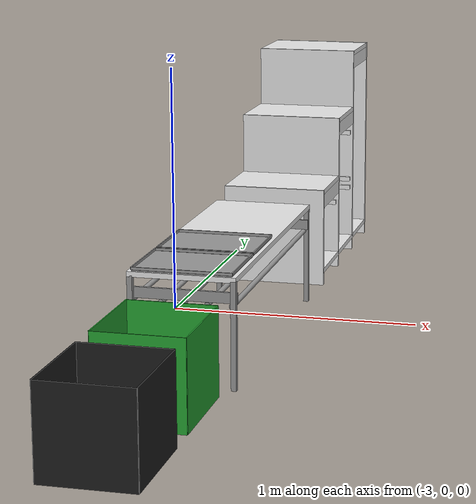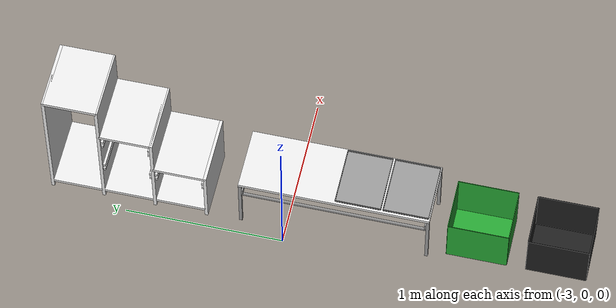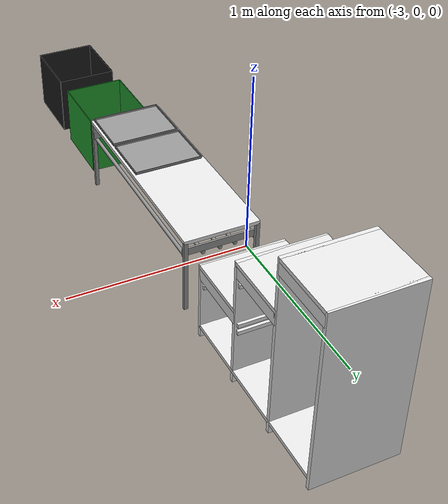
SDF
<sdf version="1.6">
 <world name="default">
  <model name="wrc_bin_black">
   <static>1</static>
   <link name="link">
    <inertial><mass>1</mass></inertial>
    <collision name="bottom">
     <pose>0 0 0.002 0 -0 0</pose>
     <geometry><box><size>0.33 0.38 0.004</size></box></geometry>
    </collision>
    <visual name="bottom_v">
     <pose>0 0 0.002 0 -0 0</pose>
     <geometry><box><size>0.33 0.38 0.004</size></box></geometry>
     <material>
      <script><uri>file://media/materials/scripts/gazebo.material</uri><name>Gazebo/Black</name></script>
     </material>
    </visual>
    <collision name="front">
     <pose>0 0.19 0.165 0 -0 0</pose>
     <geometry><box><size>0.33 0.004 0.33</size></box></geometry>
    </collision>
    <visual name="front_v">
     <pose>0 0.19 0.165 0 -0 0</pose>
     <geometry><box><size>0.33 0.004 0.33</size></box></geometry>
     <material>
      <script><uri>file://media/materials/scripts/gazebo.material</uri><name>Gazebo/Black</name></script>
     </material>
    </visual>
    <collision name="back">
     <pose>0 -0.19 0.165 0 -0 0</pose>
     <geometry><box><size>0.33 0.004 0.33</size></box></geometry>
    </collision>
    <visual name="back_v">
     <pose>0 -0.19 0.165 0 -0 0</pose>
     <geometry><box><size>0.33 0.004 0.33</size></box></geometry>
     <material>
      <script><uri>file://media/materials/scripts/gazebo.material</uri><name>Gazebo/Black</name></script>
     </material>
    </visual>
    <collision name="left">
     <pose>0.165 0 0.165 0 -0 0</pose>
     <geometry><box><size>0.004 0.38 0.33</size></box></geometry>
    </collision>
    <visual name="left_v">
     <pose>0.165 0 0.165 0 -0 0</pose>
     <geometry><box><size>0.004 0.38 0.33</size></box></geometry>
     <material>
      <script><uri>file://media/materials/scripts/gazebo.material</uri><name>Gazebo/Black</name></script>
     </material>
    </visual>
    <collision name="right">
     <pose>-0.165 0 0.165 0 -0 0</pose>
     <geometry><box><size>0.004 0.38 0.33</size></box></geometry>
    </collision>
    <visual name="right_v">
     <pose>-0.165 0 0.165 0 -0 0</pose>
     <geometry><box><size>0.004 0.38 0.33</size></box></geometry>
     <material>
      <script><uri>file://media/materials/scripts/gazebo.material</uri><name>Gazebo/Black</name></script>
     </material>
    </visual>
   </link>
   <pose>-2.7 -1.7 0 0 -0 0</pose>
  </model>
  <model name="wrc_bin_green">
   <static>1</static>
   <link name="link">
    <inertial><mass>1</mass></inertial>
    <collision name="bottom">
     <pose>0 0 0.002 0 -0 0</pose>
     <geometry><box><size>0.33 0.38 0.004</size></box></geometry>
    </collision>
    <visual name="bottom_v">
     <pose>0 0 0.002 0 -0 0</pose>
     <geometry><box><size>0.33 0.38 0.004</size></box></geometry>
     <material>
      <script><uri>file://media/materials/scripts/gazebo.material</uri><name>Gazebo/Green</name></script>
     </material>
    </visual>
    <collision name="front">
     <pose>0 0.19 0.165 0 -0 0</pose>
     <geometry><box><size>0.33 0.004 0.33</size></box></geometry>
    </collision>
    <visual name="front_v">
     <pose>0 0.19 0.165 0 -0 0</pose>
     <geometry><box><size>0.33 0.004 0.33</size></box></geometry>
     <material>
      <script><uri>file://media/materials/scripts/gazebo.material</uri><name>Gazebo/Green</name></script>
     </material>
    </visual>
    <collision name="back">
     <pose>0 -0.19 0.165 0 -0 0</pose>
     <geometry><box><size>0.33 0.004 0.33</size></box></geometry>
    </collision>
    <visual name="back_v">
     <pose>0 -0.19 0.165 0 -0 0</pose>
     <geometry><box><size>0.33 0.004 0.33</size></box></geometry>
     <material>
      <script><uri>file://media/materials/scripts/gazebo.material</uri><name>Gazebo/Green</name></script>
     </material>
    </visual>
    <collision name="left">
     <pose>0.165 0 0.165 0 -0 0</pose>
     <geometry><box><size>0.004 0.38 0.33</size></box></geometry>
    </collision>
    <visual name="left_v">
     <pose>0.165 0 0.165 0 -0 0</pose>
     <geometry><box><size>0.004 0.38 0.33</size></box></geometry>
     <material>
      <script><uri>file://media/materials/scripts/gazebo.material</uri><name>Gazebo/Green</name></script>
     </material>
    </visual>
    <collision name="right">
     <pose>-0.165 0 0.165 0 -0 0</pose>
     <geometry><box><size>0.004 0.38 0.33</size></box></geometry>
    </collision>
    <visual name="right_v">
     <pose>-0.165 0 0.165 0 -0 0</pose>
     <geometry><box><size>0.004 0.38 0.33</size></box></geometry>
     <material>
      <script><uri>file://media/materials/scripts/gazebo.material</uri><name>Gazebo/Green</name></script>
     </material>
    </visual>
   </link>
   <pose>-2.7 -1.2 0 0 -0 0</pose>
  </model>
  <model name="wrc_stair_like_drawer">
   <static>1</static>
   <link name="link">
    <inertial><mass>1</mass></inertial>
    <collision name="slit1">
     <pose>0 -0.495 0.21 0 -0 0</pose>
     <geometry><box><size>0.44 0.02 0.42</size></box></geometry>
    </collision>
    <visual name="slit1_v">
     <pose>0 -0.495 0.21 0 -0 0</pose>
     <geometry><box><size>0.44 0.02 0.42</size></box></geometry>
     <material>
      <script><uri>file://media/materials/scripts/gazebo.material</uri><name>Gazebo/White</name></script>
     </material>
    </visual>
    <collision name="holder_slit1_1_left_low">
     <pose>0 -0.48 0.3 0 -0 0</pose>
     <geometry><box><size>0.42 0.02 0.02</size></box></geometry>
    </collision>
    <visual name="holder_slit1_1_left_low_v">
     <pose>0 -0.48 0.3 0 -0 0</pose>
     <geometry><box><size>0.42 0.02 0.02</size></box></geometry>
     <material>
      <script><uri>file://media/materials/scripts/gazebo.material</uri><name>Gazebo/White</name></script>
     </material>
    </visual>
    <collision name="holder_slit1_1_left_high">
     <pose>0 -0.48 0.34 0 -0 0</pose>
     <geometry><box><size>0.42 0.02 0.02</size></box></geometry>
    </collision>
    <visual name="holder_slit1_1_left_high_v">
     <pose>0 -0.48 0.34 0 -0 0</pose>
     <geometry><box><size>0.42 0.02 0.02</size></box></geometry>
     <material>
      <script><uri>file://media/materials/scripts/gazebo.material</uri><name>Gazebo/White</name></script>
     </material>
    </visual>
    <collision name="holder_slit1_1_right_low">
     <pose>0 -0.18 0.3 0 -0 0</pose>
     <geometry><box><size>0.42 0.02 0.02</size></box></geometry>
    </collision>
    <visual name="holder_slit1_1_right_low_v">
     <pose>0 -0.18 0.3 0 -0 0</pose>
     <geometry><box><size>0.42 0.02 0.02</size></box></geometry>
     <material>
      <script><uri>file://media/materials/scripts/gazebo.material</uri><name>Gazebo/White</name></script>
     </material>
    </visual>
    <collision name="holder_slit1_1_right_high">
     <pose>0 -0.18 0.34 0 -0 0</pose>
     <geometry><box><size>0.42 0.02 0.02</size></box></geometry>
    </collision>
    <visual name="holder_slit1_1_right_high_v">
     <pose>0 -0.18 0.34 0 -0 0</pose>
     <geometry><box><size>0.42 0.02 0.02</size></box></geometry>
     <material>
      <script><uri>file://media/materials/scripts/gazebo.material</uri><name>Gazebo/White</name></script>
     </material>
    </visual>
    <collision name="slit2">
     <pose>0 -0.165 0.34 0 -0 0</pose>
     <geometry><box><size>0.44 0.02 0.68</size></box></geometry>
    </collision>
    <visual name="slit2_v">
     <pose>0 -0.165 0.34 0 -0 0</pose>
     <geometry><box><size>0.44 0.02 0.68</size></box></geometry>
     <material>
      <script><uri>file://media/materials/scripts/gazebo.material</uri><name>Gazebo/White</name></script>
     </material>
    </visual>
    <collision name="holder_slit2_1_left_low">
     <pose>0 -0.15 0.3 0 -0 0</pose>
     <geometry><box><size>0.42 0.02 0.02</size></box></geometry>
    </collision>
    <visual name="holder_slit2_1_left_low_v">
     <pose>0 -0.15 0.3 0 -0 0</pose>
     <geometry><box><size>0.42 0.02 0.02</size></box></geometry>
     <material>
      <script><uri>file://media/materials/scripts/gazebo.material</uri><name>Gazebo/White</name></script>
     </material>
    </visual>
    <collision name="holder_slit2_1_left_high">
     <pose>0 -0.15 0.34 0 -0 0</pose>
     <geometry><box><size>0.42 0.02 0.02</size></box></geometry>
    </collision>
    <visual name="holder_slit2_1_left_high_v">
     <pose>0 -0.15 0.34 0 -0 0</pose>
     <geometry><box><size>0.42 0.02 0.02</size></box></geometry>
     <material>
      <script><uri>file://media/materials/scripts/gazebo.material</uri><name>Gazebo/White</name></script>
     </material>
    </visual>
    <collision name="holder_slit2_1_right_low">
     <pose>0 0.15 0.3 0 -0 0</pose>
     <geometry><box><size>0.42 0.02 0.02</size></box></geometry>
    </collision>
    <visual name="holder_slit2_1_right_low_v">
     <pose>0 0.15 0.3 0 -0 0</pose>
     <geometry><box><size>0.42 0.02 0.02</size></box></geometry>
     <material>
      <script><uri>file://media/materials/scripts/gazebo.material</uri><name>Gazebo/White</name></script>
     </material>
    </visual>
    <collision name="holder_slit2_1_right_high">
     <pose>0 0.15 0.34 0 -0 0</pose>
     <geometry><box><size>0.42 0.02 0.02</size></box></geometry>
    </collision>
    <visual name="holder_slit2_1_right_high_v">
     <pose>0 0.15 0.34 0 -0 0</pose>
     <geometry><box><size>0.42 0.02 0.02</size></box></geometry>
     <material>
      <script><uri>file://media/materials/scripts/gazebo.material</uri><name>Gazebo/White</name></script>
     </material>
    </visual>
    <collision name="holder_slit2_2_left_low">
     <pose>0 -0.15 0.56 0 -0 0</pose>
     <geometry><box><size>0.42 0.02 0.02</size></box></geometry>
    </collision>
    <visual name="holder_slit2_2_left_low_v">
     <pose>0 -0.15 0.56 0 -0 0</pose>
     <geometry><box><size>0.42 0.02 0.02</size></box></geometry>
     <material>
      <script><uri>file://media/materials/scripts/gazebo.material</uri><name>Gazebo/White</name></script>
     </material>
    </visual>
    <collision name="holder_slit2_2_left_high">
     <pose>0 -0.15 0.6 0 -0 0</pose>
     <geometry><box><size>0.42 0.02 0.02</size></box></geometry>
    </collision>
    <visual name="holder_slit2_2_left_high_v">
     <pose>0 -0.15 0.6 0 -0 0</pose>
     <geometry><box><size>0.42 0.02 0.02</size></box></geometry>
     <material>
      <script><uri>file://media/materials/scripts/gazebo.material</uri><name>Gazebo/White</name></script>
     </material>
    </visual>
    <collision name="holder_slit2_2_right_low">
     <pose>0 0.15 0.56 0 -0 0</pose>
     <geometry><box><size>0.42 0.02 0.02</size></box></geometry>
    </collision>
    <visual name="holder_slit2_2_right_low_v">
     <pose>0 0.15 0.56 0 -0 0</pose>
     <geometry><box><size>0.42 0.02 0.02</size></box></geometry>
     <material>
      <script><uri>file://media/materials/scripts/gazebo.material</uri><name>Gazebo/White</name></script>
     </material>
    </visual>
    <collision name="holder_slit2_2_right_high">
     <pose>0 0.15 0.6 0 -0 0</pose>
     <geometry><box><size>0.42 0.02 0.02</size></box></geometry>
    </collision>
    <visual name="holder_slit2_2_right_high_v">
     <pose>0 0.15 0.6 0 -0 0</pose>
     <geometry><box><size>0.42 0.02 0.02</size></box></geometry>
     <material>
      <script><uri>file://media/materials/scripts/gazebo.material</uri><name>Gazebo/White</name></script>
     </material>
    </visual>
    <collision name="slit3">
     <pose>0 0.165 0.47 0 -0 0</pose>
     <geometry><box><size>0.44 0.02 0.94</size></box></geometry>
    </collision>
    <visual name="slit3_v">
     <pose>0 0.165 0.47 0 -0 0</pose>
     <geometry><box><size>0.44 0.02 0.94</size></box></geometry>
     <material>
      <script><uri>file://media/materials/scripts/gazebo.material</uri><name>Gazebo/White</name></script>
     </material>
    </visual>
    <collision name="slit4">
     <pose>0 0.495 0.47 0 -0 0</pose>
     <geometry><box><size>0.44 0.02 0.94</size></box></geometry>
    </collision>
    <visual name="slit4_v">
     <pose>0 0.495 0.47 0 -0 0</pose>
     <geometry><box><size>0.44 0.02 0.94</size></box></geometry>
     <material>
      <script><uri>file://media/materials/scripts/gazebo.material</uri><name>Gazebo/White</name></script>
     </material>
    </visual>
    <collision name="top1">
     <pose>0 -0.33 0.41 0 -0 0</pose>
     <geometry><box><size>0.44 0.33 0.02</size></box></geometry>
    </collision>
    <visual name="top1_v">
     <pose>0 -0.33 0.41 0 -0 0</pose>
     <geometry><box><size>0.44 0.33 0.02</size></box></geometry>
     <material>
      <script><uri>file://media/materials/scripts/gazebo.material</uri><name>Gazebo/White</name></script>
     </material>
    </visual>
    <collision name="top1_front">
     <pose>0.21 -0.33 0.37 0 -0 0</pose>
     <geometry><box><size>0.02 0.33 0.06</size></box></geometry>
    </collision>
    <visual name="top1_front_v">
     <pose>0.21 -0.33 0.37 0 -0 0</pose>
     <geometry><box><size>0.02 0.33 0.06</size></box></geometry>
     <material>
      <script><uri>file://media/materials/scripts/gazebo.material</uri><name>Gazebo/White</name></script>
     </material>
    </visual>
    <collision name="top2">
     <pose>0 0 0.67 0 -0 0</pose>
     <geometry><box><size>0.44 0.33 0.02</size></box></geometry>
    </collision>
    <visual name="top2_v">
     <pose>0 0 0.67 0 -0 0</pose>
     <geometry><box><size>0.44 0.33 0.02</size></box></geometry>
     <material>
      <script><uri>file://media/materials/scripts/gazebo.material</uri><name>Gazebo/White</name></script>
     </material>
    </visual>
    <collision name="top2_front">
     <pose>0.21 0 0.63 0 -0 0</pose>
     <geometry><box><size>0.02 0.33 0.06</size></box></geometry>
    </collision>
    <visual name="top2_front_v">
     <pose>0.21 0 0.63 0 -0 0</pose>
     <geometry><box><size>0.02 0.33 0.06</size></box></geometry>
     <material>
      <script><uri>file://media/materials/scripts/gazebo.material</uri><name>Gazebo/White</name></script>
     </material>
    </visual>
    <collision name="top3">
     <pose>0 0.33 0.93 0 -0 0</pose>
     <geometry><box><size>0.44 0.33 0.02</size></box></geometry>
    </collision>
    <visual name="top3_v">
     <pose>0 0.33 0.93 0 -0 0</pose>
     <geometry><box><size>0.44 0.33 0.02</size></box></geometry>
     <material>
      <script><uri>file://media/materials/scripts/gazebo.material</uri><name>Gazebo/White</name></script>
     </material>
    </visual>
    <collision name="top3_front">
     <pose>0.21 0.33 0.89 0 -0 0</pose>
     <geometry><box><size>0.02 0.33 0.06</size></box></geometry>
    </collision>
    <visual name="top3_front_v">
     <pose>0.21 0.33 0.89 0 -0 0</pose>
     <geometry><box><size>0.02 0.33 0.06</size></box></geometry>
     <material>
      <script><uri>file://media/materials/scripts/gazebo.material</uri><name>Gazebo/White</name></script>
     </material>
    </visual>
    <collision name="bottom">
     <pose>0 0 0.06 0 -0 0</pose>
     <geometry><box><size>0.44 0.99 0.02</size></box></geometry>
    </collision>
    <visual name="bottom_v">
     <pose>0 0 0.06 0 -0 0</pose>
     <geometry><box><size>0.44 0.99 0.02</size></box></geometry>
     <material>
      <script><uri>file://media/materials/scripts/gazebo.material</uri><name>Gazebo/White</name></script>
     </material>
    </visual>
   </link>
   <pose>-2.7 1 0 0 -0 0</pose>
  </model>
  <model name="wrc_long_table_0">
   <static>1</static>
   <link name="link">
    <inertial><mass>1</mass></inertial>
    <collision name="top">
     <pose>0 0 0.39 0 -0 0</pose>
     <geometry><box><size>1.2 0.4 0.02</size></box></geometry>
    </collision>
    <visual name="top_v">
     <pose>0 0 0.39 0 -0 0</pose>
     <geometry><box><size>1.2 0.4 0.02</size></box></geometry>
     <material>
      <script><uri>file://media/materials/scripts/gazebo.material</uri><name>Gazebo/White</name></script>
     </material>
    </visual>
    <collision name="leg1">
     <pose>0.59 0.19 0.185 0 -0 0</pose>
     <geometry><box><size>0.02 0.02 0.4</size></box></geometry>
    </collision>
    <visual name="leg1_v">
     <pose>0.59 0.19 0.185 0 -0 0</pose>
     <geometry><box><size>0.02 0.02 0.4</size></box></geometry>
     <material>
      <script><uri>file://media/materials/scripts/gazebo.material</uri><name>Gazebo/Gray</name></script>
     </material>
    </visual>
    <collision name="leg2">
     <pose>-0.59 0.19 0.185 0 -0 0</pose>
     <geometry><box><size>0.02 0.02 0.4</size></box></geometry>
    </collision>
    <visual name="leg2_v">
     <pose>-0.59 0.19 0.185 0 -0 0</pose>
     <geometry><box><size>0.02 0.02 0.4</size></box></geometry>
     <material>
      <script><uri>file://media/materials/scripts/gazebo.material</uri><name>Gazebo/Gray</name></script>
     </material>
    </visual>
    <collision name="leg3">
     <pose>0.59 -0.19 0.185 0 -0 0</pose>
     <geometry><box><size>0.02 0.02 0.4</size></box></geometry>
    </collision>
    <visual name="leg3_v">
     <pose>0.59 -0.19 0.185 0 -0 0</pose>
     <geometry><box><size>0.02 0.02 0.4</size></box></geometry>
     <material>
      <script><uri>file://media/materials/scripts/gazebo.material</uri><name>Gazebo/Gray</name></script>
     </material>
    </visual>
    <collision name="leg4">
     <pose>-0.59 -0.19 0.185 0 -0 0</pose>
     <geometry><box><size>0.02 0.02 0.4</size></box></geometry>
    </collision>
    <visual name="leg4_v">
     <pose>-0.59 -0.19 0.185 0 -0 0</pose>
     <geometry><box><size>0.02 0.02 0.4</size></box></geometry>
     <material>
      <script><uri>file://media/materials/scripts/gazebo.material</uri><name>Gazebo/Gray</name></script>
     </material>
    </visual>
    <collision name="side_panel1">
     <pose>0.575 0 0.32 0 -0 0</pose>
     <geometry><box><size>0.01 0.4 0.04</size></box></geometry>
    </collision>
    <visual name="side_panel1_v">
     <pose>0.575 0 0.32 0 -0 0</pose>
     <geometry><box><size>0.01 0.4 0.04</size></box></geometry>
     <material>
      <script><uri>file://media/materials/scripts/gazebo.material</uri><name>Gazebo/Gray</name></script>
     </material>
    </visual>
    <collision name="side_panel2">
     <pose>-0.575 0 0.32 0 -0 0</pose>
     <geometry><box><size>0.01 0.4 0.04</size></box></geometry>
    </collision>
    <visual name="side_panel2_v">
     <pose>-0.575 0 0.32 0 -0 0</pose>
     <geometry><box><size>0.01 0.4 0.04</size></box></geometry>
     <material>
      <script><uri>file://media/materials/scripts/gazebo.material</uri><name>Gazebo/Gray</name></script>
     </material>
    </visual>
    <collision name="bar1">
     <pose>0 0.2 0.29 0 1.57 0</pose>
     <geometry><cylinder><radius>0.01</radius><length>1.16</length></cylinder></geometry>
    </collision>
    <visual name="bar1_v">
     <pose>0 0.19 0.29 0 1.57 0</pose>
     <geometry><cylinder><radius>0.01</radius><length>1.16</length></cylinder></geometry>
     <material>
      <script><uri>file://media/materials/scripts/gazebo.material</uri><name>Gazebo/Gray</name></script>
     </material>
    </visual>
    <collision name="bar2">
     <pose>0 0.08 0.29 0 1.57 0</pose>
     <geometry><cylinder><radius>0.01</radius><length>1.16</length></cylinder></geometry>
    </collision>
    <visual name="bar2_v">
     <pose>0 0.08 0.29 0 1.57 0</pose>
     <geometry><cylinder><radius>0.01</radius><length>1.16</length></cylinder></geometry>
     <material>
      <script><uri>file://media/materials/scripts/gazebo.material</uri><name>Gazebo/Gray</name></script>
     </material>
    </visual>
    <collision name="bar3">
     <pose>0 0 0.29 0 1.57 0</pose>
     <geometry><cylinder><radius>0.01</radius><length>1.16</length></cylinder></geometry>
    </collision>
    <visual name="bar3_v">
     <pose>0 0 0.29 0 1.57 0</pose>
     <geometry><cylinder><radius>0.01</radius><length>1.16</length></cylinder></geometry>
     <material>
      <script><uri>file://media/materials/scripts/gazebo.material</uri><name>Gazebo/Gray</name></script>
     </material>
    </visual>
    <collision name="bar4">
     <pose>0 -0.08 0.29 0 1.57 0</pose>
     <geometry><cylinder><radius>0.01</radius><length>1.16</length></cylinder></geometry>
    </collision>
    <visual name="bar4_v">
     <pose>0 -0.09 0.29 0 1.57 0</pose>
     <geometry><cylinder><radius>0.01</radius><length>1.16</length></cylinder></geometry>
     <material>
      <script><uri>file://media/materials/scripts/gazebo.material</uri><name>Gazebo/Gray</name></script>
     </material>
    </visual>
    <collision name="bar5">
     <pose>0 -0.18 0.29 0 1.57 0</pose>
     <geometry><cylinder><radius>0.01</radius><length>1.16</length></cylinder></geometry>
    </collision>
    <visual name="bar5_v">
     <pose>0 -0.18 0.29 0 1.57 0</pose>
     <geometry><cylinder><radius>0.01</radius><length>1.16</length></cylinder></geometry>
     <material>
      <script><uri>file://media/materials/scripts/gazebo.material</uri><name>Gazebo/Gray</name></script>
     </material>
    </visual>
   </link>
   <pose>-2.7 -0.3 0 0 -0 1.57</pose>
  </model>
  <model name="wrc_tray_1">
   <static>1</static>
   <link name="link">
    <inertial><mass>1</mass></inertial>
    <collision name="bottom">
     <pose>0 0 0.002 0 -0 0</pose>
     <geometry><box><size>0.36 0.38 0.004</size></box></geometry>
    </collision>
    <visual name="bottom_v">
     <pose>0 0 0.002 0 -0 0</pose>
     <geometry><box><size>0.285 0.37 0.004</size></box></geometry>
     <material>
      <script><uri>file://media/materials/scripts/gazebo.material</uri><name>Gazebo/Gray</name></script>
     </material>
    </visual>
    <collision name="front">
     <pose>0 0.185 0.01 0 -0 0</pose>
     <geometry><box><size>0.285 0.004 0.01</size></box></geometry>
    </collision>
    <visual name="front_v">
     <pose>0 0.185 0.01 0 -0 0</pose>
     <geometry><box><size>0.285 0.004 0.01</size></box></geometry>
     <material>
      <script><uri>file://media/materials/scripts/gazebo.material</uri><name>Gazebo/Gray</name></script>
     </material>
    </visual>
    <collision name="back">
     <pose>0 -0.185 0.01 0 -0 0</pose>
     <geometry><box><size>0.285 0.004 0.01</size></box></geometry>
    </collision>
    <visual name="back_v">
     <pose>0 -0.185 0.01 0 -0 0</pose>
     <geometry><box><size>0.285 0.004 0.01</size></box></geometry>
     <material>
      <script><uri>file://media/materials/scripts/gazebo.material</uri><name>Gazebo/Gray</name></script>
     </material>
    </visual>
    <collision name="left">
     <pose>0.1425 0 0.01 0 -0 0</pose>
     <geometry><box><size>0.004 0.37 0.01</size></box></geometry>
    </collision>
    <visual name="left_v">
     <pose>0.1425 0 0.01 0 -0 0</pose>
     <geometry><box><size>0.004 0.37 0.01</size></box></geometry>
     <material>
      <script><uri>file://media/materials/scripts/gazebo.material</uri><name>Gazebo/Gray</name></script>
     </material>
    </visual>
    <collision name="right">
     <pose>-0.1425 0 0.01 0 -0 0</pose>
     <geometry><box><size>0.004 0.37 0.01</size></box></geometry>
    </collision>
    <visual name="right_v">
     <pose>-0.1425 0 0.01 0 -0 0</pose>
     <geometry><box><size>0.004 0.37 0.01</size></box></geometry>
     <material>
      <script><uri>file://media/materials/scripts/gazebo.material</uri><name>Gazebo/Gray</name></script>
     </material>
    </visual>
   </link>
   <pose>-2.7 -0.75 0.4 0 -0 1.57</pose>
  </model>
  <model name="wrc_tray_2">
   <static>1</static>
   <link name="link">
    <inertial><mass>1</mass></inertial>
    <collision name="bottom">
     <pose>0 0 0.002 0 -0 0</pose>
     <geometry><box><size>0.36 0.38 0.004</size></box></geometry>
    </collision>
    <visual name="bottom_v">
     <pose>0 0 0.002 0 -0 0</pose>
     <geometry><box><size>0.285 0.37 0.004</size></box></geometry>
     <material>
      <script><uri>file://media/materials/scripts/gazebo.material</uri><name>Gazebo/Gray</name></script>
     </material>
    </visual>
    <collision name="front">
     <pose>0 0.185 0.01 0 -0 0</pose>
     <geometry><box><size>0.285 0.004 0.01</size></box></geometry>
    </collision>
    <visual name="front_v">
     <pose>0 0.185 0.01 0 -0 0</pose>
     <geometry><box><size>0.285 0.004 0.01</size></box></geometry>
     <material>
      <script><uri>file://media/materials/scripts/gazebo.material</uri><name>Gazebo/Gray</name></script>
     </material>
    </visual>
    <collision name="back">
     <pose>0 -0.185 0.01 0 -0 0</pose>
     <geometry><box><size>0.285 0.004 0.01</size></box></geometry>
    </collision>
    <visual name="back_v">
     <pose>0 -0.185 0.01 0 -0 0</pose>
     <geometry><box><size>0.285 0.004 0.01</size></box></geometry>
     <material>
      <script><uri>file://media/materials/scripts/gazebo.material</uri><name>Gazebo/Gray</name></script>
     </material>
    </visual>
    <collision name="left">
     <pose>0.1425 0 0.01 0 -0 0</pose>
     <geometry><box><size>0.004 0.37 0.01</size></box></geometry>
    </collision>
    <visual name="left_v">
     <pose>0.1425 0 0.01 0 -0 0</pose>
     <geometry><box><size>0.004 0.37 0.01</size></box></geometry>
     <material>
      <script><uri>file://media/materials/scripts/gazebo.material</uri><name>Gazebo/Gray</name></script>
     </material>
    </visual>
    <collision name="right">
     <pose>-0.1425 0 0.01 0 -0 0</pose>
     <geometry><box><size>0.004 0.37 0.01</size></box></geometry>
    </collision>
    <visual name="right_v">
     <pose>-0.1425 0 0.01 0 -0 0</pose>
     <geometry><box><size>0.004 0.37 0.01</size></box></geometry>
     <material>
      <script><uri>file://media/materials/scripts/gazebo.material</uri><name>Gazebo/Gray</name></script>
     </material>
    </visual>
   </link>
   <pose>-2.7 -0.45 0.4 0 -0 1.57</pose>
  </model>
 </world>
</sdf>
